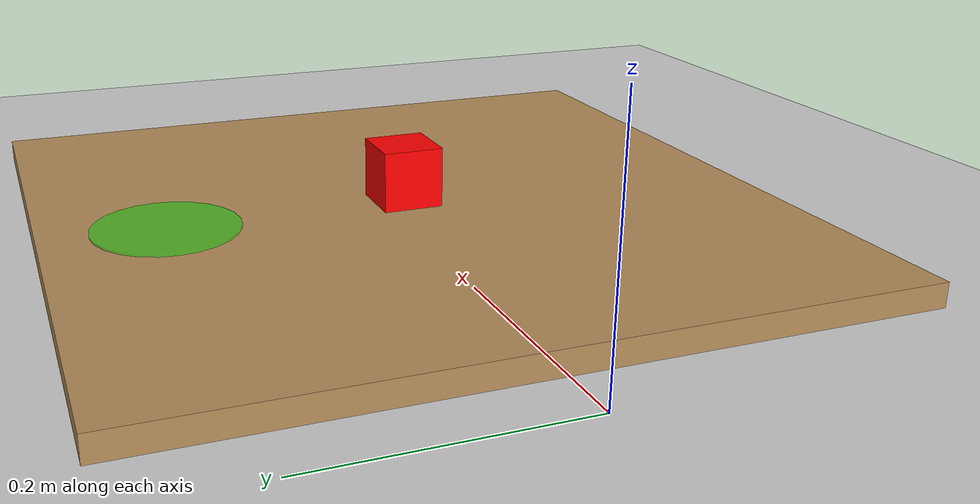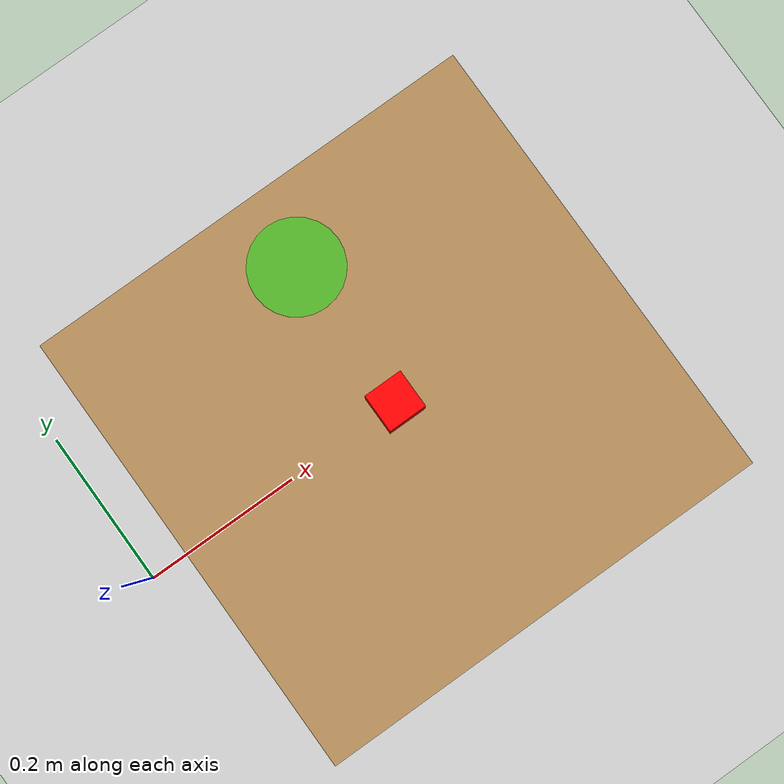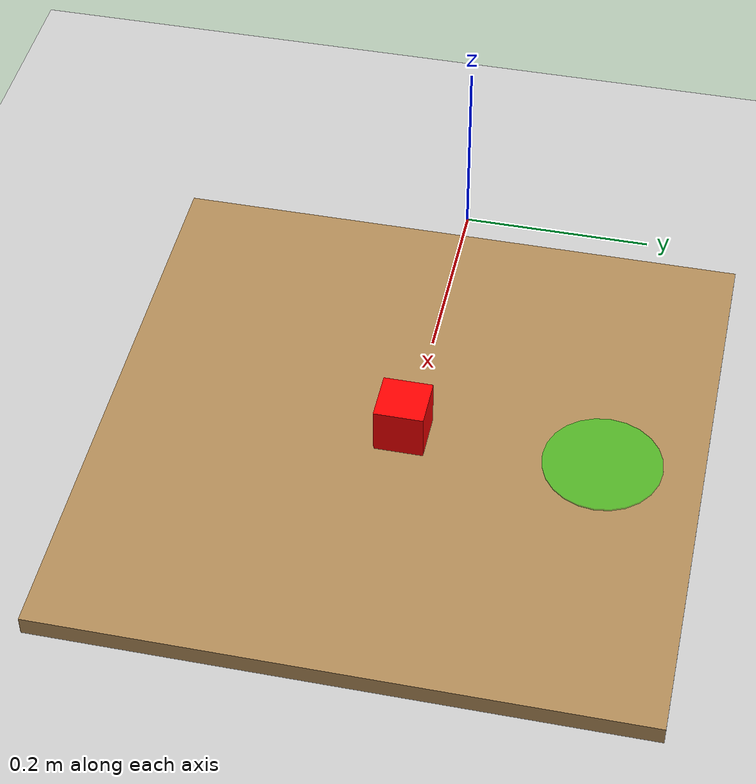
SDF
<?xml version="1.0" ?>
<sdf version="1.7">
  <world name="default">

    <gui fullscreen="0">
      <!-- Camera framed on this scene's workspace -->
      <plugin filename="MinimalScene" name="3D View">
        <gz-gui>
          <title>3D View</title>
          <property type="bool" key="showTitleBar">false</property>
          <property type="string" key="state">docked</property>
        </gz-gui>
        <engine>ogre2</engine>
        <scene>scene</scene>
        <ambient_light>0.4 0.4 0.4</ambient_light>
        <background_color>0.8 0.8 0.8</background_color>
        <camera_pose>-0.9 -0.9 0.9 0 0.49 0.67</camera_pose>
      </plugin>
      <plugin filename="EntityContextMenuPlugin" name="Entity context menu">
        <gz-gui>
          <property key="state" type="string">floating</property>
          <property key="width" type="double">5</property>
          <property key="height" type="double">5</property>
          <property key="showTitleBar" type="bool">false</property>
        </gz-gui>
      </plugin>
      <plugin filename="GzSceneManager" name="Scene Manager">
        <gz-gui>
          <property key="resizable" type="bool">false</property>
          <property key="width" type="double">5</property>
          <property key="height" type="double">5</property>
          <property key="state" type="string">floating</property>
          <property key="showTitleBar" type="bool">false</property>
        </gz-gui>
      </plugin>
      <plugin filename="InteractiveViewControl" name="Interactive view control">
        <gz-gui>
          <property key="resizable" type="bool">false</property>
          <property key="width" type="double">5</property>
          <property key="height" type="double">5</property>
          <property key="state" type="string">floating</property>
          <property key="showTitleBar" type="bool">false</property>
        </gz-gui>
      </plugin>
      <plugin filename="CameraTracking" name="Camera Tracking">
        <gz-gui>
          <property key="resizable" type="bool">false</property>
          <property key="width" type="double">5</property>
          <property key="height" type="double">5</property>
          <property key="state" type="string">floating</property>
          <property key="showTitleBar" type="bool">false</property>
        </gz-gui>
      </plugin>
      <plugin filename="MarkerManager" name="Marker manager">
        <gz-gui>
          <property key="resizable" type="bool">false</property>
          <property key="width" type="double">5</property>
          <property key="height" type="double">5</property>
          <property key="state" type="string">floating</property>
          <property key="showTitleBar" type="bool">false</property>
        </gz-gui>
      </plugin>
      <plugin filename="SelectEntities" name="Select Entities">
        <gz-gui>
          <property key="resizable" type="bool">false</property>
          <property key="width" type="double">5</property>
          <property key="height" type="double">5</property>
          <property key="state" type="string">floating</property>
          <property key="showTitleBar" type="bool">false</property>
        </gz-gui>
      </plugin>
      <plugin filename="Spawn" name="Spawn Entities">
        <gz-gui>
          <property key="resizable" type="bool">false</property>
          <property key="width" type="double">5</property>
          <property key="height" type="double">5</property>
          <property key="state" type="string">floating</property>
          <property key="showTitleBar" type="bool">false</property>
        </gz-gui>
      </plugin>
      <plugin filename="VisualizationCapabilities" name="Visualization Capabilities">
        <gz-gui>
          <property key="resizable" type="bool">false</property>
          <property key="width" type="double">5</property>
          <property key="height" type="double">5</property>
          <property key="state" type="string">floating</property>
          <property key="showTitleBar" type="bool">false</property>
        </gz-gui>
      </plugin>
      <plugin filename="WorldControl" name="World control">
        <gz-gui>
          <title>World control</title>
          <property type="bool" key="showTitleBar">false</property>
          <property type="bool" key="resizable">false</property>
          <property type="double" key="height">72</property>
          <property type="double" key="z">1</property>
          <property type="string" key="state">floating</property>
          <anchors target="3D View">
            <line own="left" target="left"/>
            <line own="bottom" target="bottom"/>
          </anchors>
        </gz-gui>
        <play_pause>true</play_pause>
        <step>true</step>
        <start_paused>true</start_paused>
        <use_event>true</use_event>
      </plugin>
      <plugin filename="WorldStats" name="World stats">
        <gz-gui>
          <title>World stats</title>
          <property type="bool" key="showTitleBar">false</property>
          <property type="bool" key="resizable">false</property>
          <property type="double" key="height">110</property>
          <property type="double" key="width">290</property>
          <property type="double" key="z">1</property>
          <property type="string" key="state">floating</property>
          <anchors target="3D View">
            <line own="right" target="right"/>
            <line own="bottom" target="bottom"/>
          </anchors>
        </gz-gui>
        <sim_time>true</sim_time>
        <real_time>true</real_time>
        <real_time_factor>true</real_time_factor>
        <iterations>true</iterations>
      </plugin>
      <plugin filename="EntityTree" name="Entity tree">
        <gz-gui>
          <property type="bool" key="showTitleBar">false</property>
          <property type="string" key="state">docked</property>
        </gz-gui>
      </plugin>
    </gui>
    <physics name="default_physics" type="ode">
      <max_step_size>0.001</max_step_size>
      <real_time_factor>1</real_time_factor>
      <gravity>0.0 0.0 -9.8</gravity>
    </physics>

    <plugin filename="gz-sim-physics-system" name="gz::sim::systems::Physics"/>
    <plugin filename="gz-sim-user-commands-system" name="gz::sim::systems::UserCommands"/>
    <plugin filename="gz-sim-scene-broadcaster-system" name="gz::sim::systems::SceneBroadcaster"/>
    <plugin filename="gz-sim-sensors-system" name="gz::sim::systems::Sensors">
      <render_engine>ogre2</render_engine>
    </plugin>
    <plugin filename="gz-sim-contact-system" name="gz::sim::systems::Contact"/>

    <include>
      <uri>model://sun</uri>
    </include>

    <include>
      <uri>model://ground_plane</uri>
    </include>

    <!-- Manipulation table — top surface at z=0.02, matching MuJoCo table -->
    <model name="table">
      <static>true</static>
      <pose>0.35 0.0 0.01 0 0 0</pose>
      <link name="link">
        <collision name="collision">
          <geometry>
            <box><size>0.60 0.60 0.02</size></box>
          </geometry>
        </collision>
        <visual name="visual">
          <geometry>
            <box><size>0.60 0.60 0.02</size></box>
          </geometry>
          <material>
            <ambient>0.7 0.55 0.35 1</ambient>
            <diffuse>0.7 0.55 0.35 1</diffuse>
          </material>
        </visual>
      </link>
    </model>

    <!-- Red cube — 0.05x0.05x0.05m, centre at z=0.045 (resting on table top).
         Matches MuJoCo og.size=[0.025,0.025,0.025] (half-extents). -->
    <include>
      <uri>model://red_cube</uri>
      <name>red_cube</name>
      <pose>0.35 0.0 0.045 0 0 0</pose>
    </include>

    <!-- Drop zone visual marker — green disc at x=0.35 y=0.20 -->
    <model name="drop_zone">
      <static>true</static>
      <pose>0.35 0.20 0.021 0 0 0</pose>
      <link name="link">
        <visual name="visual">
          <geometry>
            <cylinder><radius>0.06</radius><length>0.002</length></cylinder>
          </geometry>
          <material>
            <ambient>0.0 0.9 0.0 0.5</ambient>
            <diffuse>0.0 0.9 0.0 0.5</diffuse>
          </material>
        </visual>
      </link>
    </model>

    <!-- Matches the GUI's MinimalScene ambient_light/background_color above -->
    <scene>
      <ambient>0.4 0.4 0.4 1</ambient>
      <background>0.8 0.8 0.8 1</background>
      <shadows>true</shadows>
      <grid>false</grid>
    </scene>
  </world>
</sdf>

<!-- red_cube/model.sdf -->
<sdf version="1.6">
  <model name="red_cube">
    <static>false</static>
    <link name="link">
      <inertial>
        <mass>0.100</mass>
        <inertia>
          <ixx>0.0000417</ixx>
          <ixy>0</ixy>
          <ixz>0</ixz>
          <iyy>0.0000417</iyy>
          <iyz>0</iyz>
          <izz>0.0000417</izz>
        </inertia>
      </inertial>
      <collision name="collision">
        <geometry>
          <box>
            <size>0.05 0.05 0.05</size>
          </box>
        </geometry>
        <surface>
          <friction>
            <ode>
              <mu>5.0</mu>
              <mu2>5.0</mu2>
              <slip1>0.0001</slip1>
              <slip2>0.0001</slip2>
            </ode>
          </friction>
          <contact>
            <ode>
              <kp>1e5</kp>
              <kd>10</kd>
              <max_vel>0.1</max_vel>
              <min_depth>0.001</min_depth>
            </ode>
          </contact>
        </surface>
      </collision>
      <visual name="visual">
        <geometry>
          <box>
            <size>0.05 0.05 0.05</size>
          </box>
        </geometry>
        <material>
          <ambient>1.0 0.0 0.0 1</ambient>
          <diffuse>1.0 0.0 0.0 1</diffuse>
          <specular>0.5 0.5 0.5 1</specular>
        </material>
      </visual>
    </link>
  </model>
</sdf>
